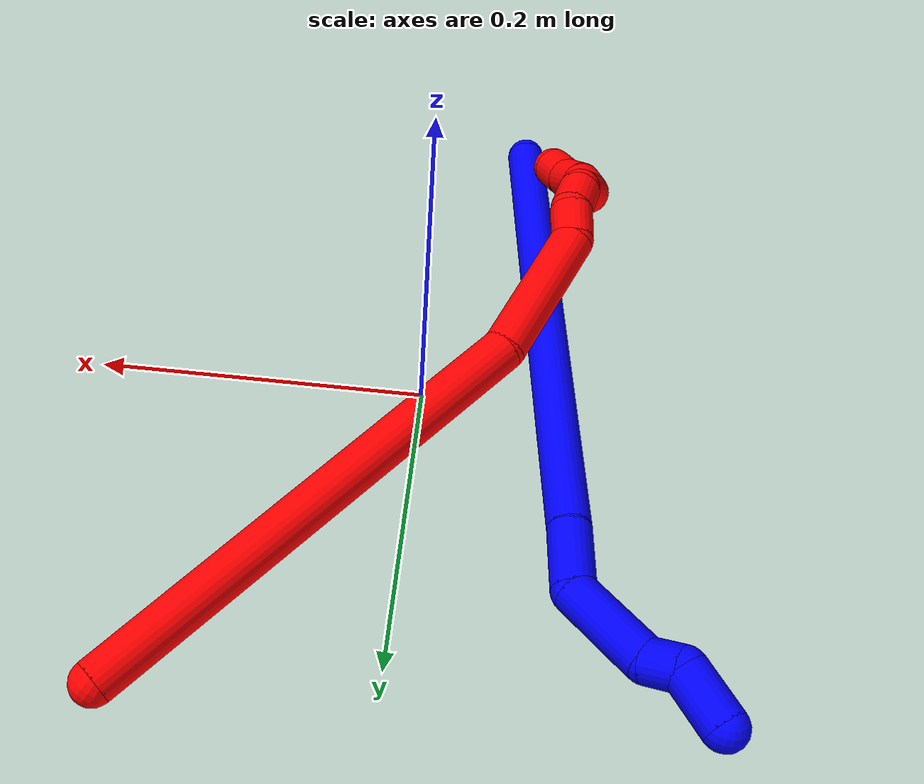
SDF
<sdf version="1.7">
 <world name="default">
  <plugin name="TubeGeneratorPlugin" filename="libtube_generator_plugin.so"/>
  <model name="photoneo_s_sensor">
   <static>1</static>
   <pose>0 0 2 1.57079 1.57079 3.14159</pose>
   <link name="link">
    <inertial><mass>0.1</mass></inertial>
    <sensor name="sensor" type="depth">
     <update_rate>30</update_rate>
     <camera>
      <horizontal_fov>1.22</horizontal_fov>
      <image><width>1920</width><height>1200</height><format>B8G8R8</format></image>
      <clip><near>0.1</near><far>4</far></clip>
      <depth_camera><output>points</output></depth_camera>
     </camera>
     <plugin name="camera_plugin" filename="libgazebo_ros_depth_camera.so">
      <baseline>0.2</baseline>
      <alwaysOn>1</alwaysOn>
      <updateRate>0.0</updateRate>
      <cameraName>camera_ir</cameraName>
      <imageTopicName>/camera/color/image_raw</imageTopicName>
      <cameraInfoTopicName>/camera/color/camera_info</cameraInfoTopicName>
      <depthImageTopicName>/camera/depth/image_raw</depthImageTopicName>
      <depthImageCameraInfoTopicName>/camera/depth/camera_info</depthImageCameraInfoTopicName>
      <pointCloudTopicName>/camera/depth/points</pointCloudTopicName>
      <frameName>fr_optical</frameName>
      <pointCloudCutoff>0.1</pointCloudCutoff>
      <pointCloudCutoffMax>2.0</pointCloudCutoffMax>
      <distortionK1>0</distortionK1>
      <distortionK2>0</distortionK2>
      <distortionK3>0</distortionK3>
      <distortionT1>0</distortionT1>
      <distortionT2>0</distortionT2>
      <CxPrime>0</CxPrime>
      <Cx>0</Cx>
      <Cy>0</Cy>
      <focalLength>0</focalLength>
      <hackBaseline>0</hackBaseline>
     </plugin>
    </sensor>
   </link>
  </model>
  <gravity>0 0 -9.8</gravity>
  <magnetic_field>6e-06 2.3e-05 -4.2e-05</magnetic_field>
  <atmosphere type="adiabatic"/>
  <physics name="default_physics" default="0" type="ode">
   <max_step_size>0.003</max_step_size>
   <real_time_factor>1</real_time_factor>
   <real_time_update_rate>1000</real_time_update_rate>
   <max_contacts>10000</max_contacts>
   <ode>
    <solver>
     <type>quick</type>
     <iters>100</iters>
     <sor>1.3</sor>
     <use_dynamic_moi_rescaling>0</use_dynamic_moi_rescaling>
    </solver>
    <constraints>
     <contact_max_correcting_vel>0</contact_max_correcting_vel>
     <contact_surface_layer>0.001</contact_surface_layer>
     <cfm>0</cfm>
     <erp>0.2</erp>
    </constraints>
   </ode>
  </physics>
  <scene><ambient>0.4 0.4 0.4 1</ambient><background>0.7 0.7 0.7 1</background><shadows>0</shadows></scene>
  <audio><device>default</device></audio>
  <spherical_coordinates>
   <surface_model>EARTH_WGS84</surface_model>
   <latitude_deg>0</latitude_deg>
   <longitude_deg>0</longitude_deg>
   <elevation>0</elevation>
   <heading_deg>0</heading_deg>
  </spherical_coordinates>
  <model name="bin">
   <static>1</static>
   <link name="bottom">
    <collision name="collision-bottom">
     <pose>0 0 -0.01 0 -0 0</pose>
     <geometry><box><size>0.8 0.6 0.02</size></box></geometry>
     <surface>
      <friction><ode><mu>100</mu><mu2>100</mu2></ode></friction>
      <contact><collide_bitmask>65535</collide_bitmask></contact>
     </surface>
    </collision>
   </link>
   <link name="west_wall">
    <collision name="collision-west_wall">
     <pose>-0.41 0 0.1 0 -0 0</pose>
     <geometry><box><size>0.02 0.6 0.2</size></box></geometry>
     <surface>
      <friction><ode><mu>100</mu><mu2>100</mu2></ode></friction>
      <contact><collide_bitmask>65535</collide_bitmask></contact>
     </surface>
    </collision>
   </link>
   <link name="east_wall">
    <collision name="collision-east_wall">
     <pose>0.41 0 0.1 0 -0 0</pose>
     <geometry><box><size>0.02 0.6 0.2</size></box></geometry>
     <surface>
      <friction><ode><mu>100</mu><mu2>100</mu2></ode></friction>
      <contact><collide_bitmask>65535</collide_bitmask></contact>
     </surface>
    </collision>
   </link>
   <link name="south_wall">
    <collision name="collision-south_wall">
     <pose>0 -0.31 0.1 0 -0 0</pose>
     <geometry><box><size>0.8 0.02 0.2</size></box></geometry>
     <surface>
      <friction><ode><mu>100</mu><mu2>100</mu2></ode></friction>
      <contact><collide_bitmask>65535</collide_bitmask></contact>
     </surface>
    </collision>
   </link>
   <link name="north_wall">
    <collision name="collision-north_wall">
     <pose>0 0.31 0.1 0 -0 0</pose>
     <geometry><box><size>0.8 0.02 0.2</size></box></geometry>
     <surface>
      <friction><ode><mu>100</mu><mu2>100</mu2></ode></friction>
      <contact><collide_bitmask>65535</collide_bitmask></contact>
     </surface>
    </collision>
   </link>
  </model>
  <model name="1">
   <static>0</static>
   <link name="1">
    <collision name="collision-cylinder-e_1_1_4">
     <pose>-0.03785 0.168029 -0.037221 -1.78879 -0.216483 0.269107</pose>
     <geometry><cylinder><radius>0.0125</radius><length>0.35243</length></cylinder></geometry>
     <surface>
      <friction><ode><mu>1.16</mu><mu2>1.16</mu2><slip1>0</slip1><slip2>0</slip2></ode></friction>
      <contact><ode><kp>1e+06</kp><kd>1</kd><max_vel>0</max_vel><min_depth>0.001</min_depth></ode></contact>
     </surface>
    </collision>
    <visual name="visual-cylinder-e_1_1_4">
     <pose>-0.03785 0.168029 -0.037221 -1.78879 -0.216483 0.269107</pose>
     <geometry><cylinder><radius>0.0125</radius><length>0.35243</length></cylinder></geometry>
     <material><ambient>0 0 1 1</ambient></material>
    </visual>
    <collision name="collision-cylinder-e_2_4_5">
     <pose>-0.079586 0.354704 -0.080314 -1.87588 -0.196183 0.266731</pose>
     <geometry><cylinder><radius>0.0125</radius><length>0.039864</length></cylinder></geometry>
     <surface>
      <friction><ode><mu>1.16</mu><mu2>1.16</mu2><slip1>0</slip1><slip2>0</slip2></ode></friction>
      <contact><ode><kp>1e+06</kp><kd>1</kd><max_vel>0</max_vel><min_depth>0.001</min_depth></ode></contact>
     </surface>
    </collision>
    <visual name="visual-cylinder-e_2_4_5">
     <pose>-0.079586 0.354704 -0.080314 -1.87588 -0.196183 0.266731</pose>
     <geometry><cylinder><radius>0.0125</radius><length>0.039864</length></cylinder></geometry>
     <material><ambient>0 0 1 1</ambient></material>
    </visual>
    <collision name="collision-cylinder-e_3_5_6">
     <pose>-0.103576 0.391876 -0.087774 -1.6563 -0.824447 0.889117</pose>
     <geometry><cylinder><radius>0.0125</radius><length>0.054768</length></cylinder></geometry>
     <surface>
      <friction><ode><mu>1.16</mu><mu2>1.16</mu2><slip1>0</slip1><slip2>0</slip2></ode></friction>
      <contact><ode><kp>1e+06</kp><kd>1</kd><max_vel>0</max_vel><min_depth>0.001</min_depth></ode></contact>
     </surface>
    </collision>
    <visual name="visual-cylinder-e_3_5_6">
     <pose>-0.103576 0.391876 -0.087774 -1.6563 -0.824447 0.889117</pose>
     <geometry><cylinder><radius>0.0125</radius><length>0.054768</length></cylinder></geometry>
     <material><ambient>0 0 1 1</ambient></material>
    </visual>
    <collision name="collision-cylinder-e_4_6_7">
     <pose>-0.132447 0.414196 -0.086147 -0.868035 -1.05474 0.527302</pose>
     <geometry><cylinder><radius>0.0125</radius><length>0.020158</length></cylinder></geometry>
     <surface>
      <friction><ode><mu>1.16</mu><mu2>1.16</mu2><slip1>0</slip1><slip2>0</slip2></ode></friction>
      <contact><ode><kp>1e+06</kp><kd>1</kd><max_vel>0</max_vel><min_depth>0.001</min_depth></ode></contact>
     </surface>
    </collision>
    <visual name="visual-cylinder-e_4_6_7">
     <pose>-0.132447 0.414196 -0.086147 -0.868035 -1.05474 0.527302</pose>
     <geometry><cylinder><radius>0.0125</radius><length>0.020158</length></cylinder></geometry>
     <material><ambient>0 0 1 1</ambient></material>
    </visual>
    <collision name="collision-cylinder-e_5_7_2">
     <pose>-0.152236 0.428881 -0.088276 -2.02693 -0.737581 1.11014</pose>
     <geometry><cylinder><radius>0.0125</radius><length>0.03278</length></cylinder></geometry>
     <surface>
      <friction><ode><mu>1.16</mu><mu2>1.16</mu2><slip1>0</slip1><slip2>0</slip2></ode></friction>
      <contact><ode><kp>1e+06</kp><kd>1</kd><max_vel>0</max_vel><min_depth>0.001</min_depth></ode></contact>
     </surface>
    </collision>
    <visual name="visual-cylinder-e_5_7_2">
     <pose>-0.152236 0.428881 -0.088276 -2.02693 -0.737581 1.11014</pose>
     <geometry><cylinder><radius>0.0125</radius><length>0.03278</length></cylinder></geometry>
     <material><ambient>0 0 1 1</ambient></material>
    </visual>
    <collision name="collision-sphere-2">
     <pose>-0.163258 0.439771 -0.093619 0 -0 0</pose>
     <geometry><sphere><radius>0.0125</radius></sphere></geometry>
     <surface>
      <friction><ode><mu>1.16</mu><mu2>1.16</mu2><slip1>0</slip1><slip2>0</slip2></ode></friction>
      <contact><ode><kp>1e+06</kp><kd>1</kd><max_vel>0</max_vel><min_depth>0.001</min_depth></ode></contact>
     </surface>
    </collision>
    <visual name="visual-sphere-2">
     <pose>-0.163258 0.439771 -0.093619 0 -0 0</pose>
     <geometry><sphere><radius>0.0125</radius></sphere></geometry>
     <material><ambient>0 0 1 1</ambient></material>
    </visual>
    <collision name="collision-sphere-7">
     <pose>-0.141213 0.417991 -0.082933 0 -0 0</pose>
     <geometry><sphere><radius>0.0125</radius></sphere></geometry>
     <surface>
      <friction><ode><mu>1.16</mu><mu2>1.16</mu2><slip1>0</slip1><slip2>0</slip2></ode></friction>
      <contact><ode><kp>1e+06</kp><kd>1</kd><max_vel>0</max_vel><min_depth>0.001</min_depth></ode></contact>
     </surface>
    </collision>
    <visual name="visual-sphere-7">
     <pose>-0.141213 0.417991 -0.082933 0 -0 0</pose>
     <geometry><sphere><radius>0.0125</radius></sphere></geometry>
     <material><ambient>0 0 1 1</ambient></material>
    </visual>
    <collision name="collision-sphere-6">
     <pose>-0.12368 0.410401 -0.089362 0 -0 0</pose>
     <geometry><sphere><radius>0.0125</radius></sphere></geometry>
     <surface>
      <friction><ode><mu>1.16</mu><mu2>1.16</mu2><slip1>0</slip1><slip2>0</slip2></ode></friction>
      <contact><ode><kp>1e+06</kp><kd>1</kd><max_vel>0</max_vel><min_depth>0.001</min_depth></ode></contact>
     </surface>
    </collision>
    <visual name="visual-sphere-6">
     <pose>-0.12368 0.410401 -0.089362 0 -0 0</pose>
     <geometry><sphere><radius>0.0125</radius></sphere></geometry>
     <material><ambient>0 0 1 1</ambient></material>
    </visual>
    <collision name="collision-sphere-5">
     <pose>-0.083471 0.373351 -0.086186 0 -0 0</pose>
     <geometry><sphere><radius>0.0125</radius></sphere></geometry>
     <surface>
      <friction><ode><mu>1.16</mu><mu2>1.16</mu2><slip1>0</slip1><slip2>0</slip2></ode></friction>
      <contact><ode><kp>1e+06</kp><kd>1</kd><max_vel>0</max_vel><min_depth>0.001</min_depth></ode></contact>
     </surface>
    </collision>
    <visual name="visual-sphere-5">
     <pose>-0.083471 0.373351 -0.086186 0 -0 0</pose>
     <geometry><sphere><radius>0.0125</radius></sphere></geometry>
     <material><ambient>0 0 1 1</ambient></material>
    </visual>
    <collision name="collision-sphere-1">
     <geometry><sphere><radius>0.0125</radius></sphere></geometry>
     <surface>
      <friction><ode><mu>1.16</mu><mu2>1.16</mu2><slip1>0</slip1><slip2>0</slip2></ode></friction>
      <contact><ode><kp>1e+06</kp><kd>1</kd><max_vel>0</max_vel><min_depth>0.001</min_depth></ode></contact>
     </surface>
    </collision>
    <visual name="visual-sphere-1">
     <geometry><sphere><radius>0.0125</radius></sphere></geometry>
     <material><ambient>0 0 1 1</ambient></material>
    </visual>
    <collision name="collision-sphere-4">
     <pose>-0.0757 0.336057 -0.074442 0 -0 0</pose>
     <geometry><sphere><radius>0.0125</radius></sphere></geometry>
     <surface>
      <friction><ode><mu>1.16</mu><mu2>1.16</mu2><slip1>0</slip1><slip2>0</slip2></ode></friction>
      <contact><ode><kp>1e+06</kp><kd>1</kd><max_vel>0</max_vel><min_depth>0.001</min_depth></ode></contact>
     </surface>
    </collision>
    <visual name="visual-sphere-4">
     <pose>-0.0757 0.336057 -0.074442 0 -0 0</pose>
     <geometry><sphere><radius>0.0125</radius></sphere></geometry>
     <material><ambient>0 0 1 1</ambient></material>
    </visual>
    <inertial>
     <pose>-0.05969 0.234457 -0.051514 0 -0 0</pose>
     <mass>0.5</mass>
     <inertia>
      <ixx>0.004414</ixx>
      <ixy>0</ixy>
      <ixz>0</ixz>
      <iyy>0.000448</iyy>
      <iyz>0</iyz>
      <izz>-0.002716</izz>
     </inertia>
    </inertial>
   </link>
   <pose>-0.052094 -0.245024 0.011499 0.236768 -0.045411 -0.107084</pose>
  </model>
  <model name="2">
   <static>0</static>
   <link name="2">
    <collision name="collision-cylinder-e_1_1_4">
     <pose>0.025424 -0.076379 -0.11758 2.56551 0.179381 0.589392</pose>
     <geometry><cylinder><radius>0.0125</radius><length>0.284993</length></cylinder></geometry>
     <surface>
      <friction><ode><mu>1.16</mu><mu2>1.16</mu2><slip1>0</slip1><slip2>0</slip2></ode></friction>
      <contact><ode><kp>1e+06</kp><kd>1</kd><max_vel>0</max_vel><min_depth>0.001</min_depth></ode></contact>
     </surface>
    </collision>
    <visual name="visual-cylinder-e_1_1_4">
     <pose>0.025424 -0.076379 -0.11758 2.56551 0.179381 0.589392</pose>
     <geometry><cylinder><radius>0.0125</radius><length>0.284993</length></cylinder></geometry>
     <material><ambient>1 0 0 1</ambient></material>
    </visual>
    <collision name="collision-cylinder-e_2_4_5">
     <pose>0.045645 -0.177741 -0.269475 2.51226 -0.121975 -0.370907</pose>
     <geometry><cylinder><radius>0.0125</radius><length>0.085527</length></cylinder></geometry>
     <surface>
      <friction><ode><mu>1.16</mu><mu2>1.16</mu2><slip1>0</slip1><slip2>0</slip2></ode></friction>
      <contact><ode><kp>1e+06</kp><kd>1</kd><max_vel>0</max_vel><min_depth>0.001</min_depth></ode></contact>
     </surface>
    </collision>
    <visual name="visual-cylinder-e_2_4_5">
     <pose>0.045645 -0.177741 -0.269475 2.51226 -0.121975 -0.370907</pose>
     <geometry><cylinder><radius>0.0125</radius><length>0.085527</length></cylinder></geometry>
     <material><ambient>1 0 0 1</ambient></material>
    </visual>
    <collision name="collision-cylinder-e_3_5_6">
     <pose>0.03418 -0.208676 -0.310704 2.43095 -0.601581 -1.39258</pose>
     <geometry><cylinder><radius>0.0125</radius><length>0.022131</length></cylinder></geometry>
     <surface>
      <friction><ode><mu>1.16</mu><mu2>1.16</mu2><slip1>0</slip1><slip2>0</slip2></ode></friction>
      <contact><ode><kp>1e+06</kp><kd>1</kd><max_vel>0</max_vel><min_depth>0.001</min_depth></ode></contact>
     </surface>
    </collision>
    <visual name="visual-cylinder-e_3_5_6">
     <pose>0.03418 -0.208676 -0.310704 2.43095 -0.601581 -1.39258</pose>
     <geometry><cylinder><radius>0.0125</radius><length>0.022131</length></cylinder></geometry>
     <material><ambient>1 0 0 1</ambient></material>
    </visual>
    <collision name="collision-cylinder-e_4_6_7">
     <pose>0.02531 -0.223177 -0.323707 2.18959 -0.243504 -0.466054</pose>
     <geometry><cylinder><radius>0.0125</radius><length>0.02163</length></cylinder></geometry>
     <surface>
      <friction><ode><mu>1.16</mu><mu2>1.16</mu2><slip1>0</slip1><slip2>0</slip2></ode></friction>
      <contact><ode><kp>1e+06</kp><kd>1</kd><max_vel>0</max_vel><min_depth>0.001</min_depth></ode></contact>
     </surface>
    </collision>
    <visual name="visual-cylinder-e_4_6_7">
     <pose>0.02531 -0.223177 -0.323707 2.18959 -0.243504 -0.466054</pose>
     <geometry><cylinder><radius>0.0125</radius><length>0.02163</length></cylinder></geometry>
     <material><ambient>1 0 0 1</ambient></material>
    </visual>
    <collision name="collision-cylinder-e_5_7_8">
     <pose>0.024073 -0.244341 -0.330381 1.6172 0.108128 0.113256</pose>
     <geometry><cylinder><radius>0.0125</radius><length>0.025403</length></cylinder></geometry>
     <surface>
      <friction><ode><mu>1.16</mu><mu2>1.16</mu2><slip1>0</slip1><slip2>0</slip2></ode></friction>
      <contact><ode><kp>1e+06</kp><kd>1</kd><max_vel>0</max_vel><min_depth>0.001</min_depth></ode></contact>
     </surface>
    </collision>
    <visual name="visual-cylinder-e_5_7_8">
     <pose>0.024073 -0.244341 -0.330381 1.6172 0.108128 0.113256</pose>
     <geometry><cylinder><radius>0.0125</radius><length>0.025403</length></cylinder></geometry>
     <material><ambient>1 0 0 1</ambient></material>
    </visual>
    <collision name="collision-cylinder-e_6_8_9">
     <pose>0.020401 -0.265629 -0.33232 1.72558 -0.521314 -0.604076</pose>
     <geometry><cylinder><radius>0.0125</radius><length>0.02025</length></cylinder></geometry>
     <surface>
      <friction><ode><mu>1.16</mu><mu2>1.16</mu2><slip1>0</slip1><slip2>0</slip2></ode></friction>
      <contact><ode><kp>1e+06</kp><kd>1</kd><max_vel>0</max_vel><min_depth>0.001</min_depth></ode></contact>
     </surface>
    </collision>
    <visual name="visual-cylinder-e_6_8_9">
     <pose>0.020401 -0.265629 -0.33232 1.72558 -0.521314 -0.604076</pose>
     <geometry><cylinder><radius>0.0125</radius><length>0.02025</length></cylinder></geometry>
     <material><ambient>1 0 0 1</ambient></material>
    </visual>
    <collision name="collision-cylinder-e_7_9_10">
     <pose>0.009645 -0.282371 -0.332153 1.38443 -0.608038 -0.508953</pose>
     <geometry><cylinder><radius>0.0125</radius><length>0.020002</length></cylinder></geometry>
     <surface>
      <friction><ode><mu>1.16</mu><mu2>1.16</mu2><slip1>0</slip1><slip2>0</slip2></ode></friction>
      <contact><ode><kp>1e+06</kp><kd>1</kd><max_vel>0</max_vel><min_depth>0.001</min_depth></ode></contact>
     </surface>
    </collision>
    <visual name="visual-cylinder-e_7_9_10">
     <pose>0.009645 -0.282371 -0.332153 1.38443 -0.608038 -0.508953</pose>
     <geometry><cylinder><radius>0.0125</radius><length>0.020002</length></cylinder></geometry>
     <material><ambient>1 0 0 1</ambient></material>
    </visual>
    <collision name="collision-cylinder-e_8_10_2">
     <pose>-0.002677 -0.297979 -0.330911 1.60777 -0.719243 -0.743949</pose>
     <geometry><cylinder><radius>0.0125</radius><length>0.020063</length></cylinder></geometry>
     <surface>
      <friction><ode><mu>1.16</mu><mu2>1.16</mu2><slip1>0</slip1><slip2>0</slip2></ode></friction>
      <contact><ode><kp>1e+06</kp><kd>1</kd><max_vel>0</max_vel><min_depth>0.001</min_depth></ode></contact>
     </surface>
    </collision>
    <visual name="visual-cylinder-e_8_10_2">
     <pose>-0.002677 -0.297979 -0.330911 1.60777 -0.719243 -0.743949</pose>
     <geometry><cylinder><radius>0.0125</radius><length>0.020063</length></cylinder></geometry>
     <material><ambient>1 0 0 1</ambient></material>
    </visual>
    <collision name="collision-sphere-2">
     <pose>-0.009286 -0.305521 -0.33119 0 -0 0</pose>
     <geometry><sphere><radius>0.0125</radius></sphere></geometry>
     <surface>
      <friction><ode><mu>1.16</mu><mu2>1.16</mu2><slip1>0</slip1><slip2>0</slip2></ode></friction>
      <contact><ode><kp>1e+06</kp><kd>1</kd><max_vel>0</max_vel><min_depth>0.001</min_depth></ode></contact>
     </surface>
    </collision>
    <visual name="visual-sphere-2">
     <pose>-0.009286 -0.305521 -0.33119 0 -0 0</pose>
     <geometry><sphere><radius>0.0125</radius></sphere></geometry>
     <material><ambient>1 0 0 1</ambient></material>
    </visual>
    <collision name="collision-sphere-10">
     <pose>0.003932 -0.290437 -0.330632 0 -0 0</pose>
     <geometry><sphere><radius>0.0125</radius></sphere></geometry>
     <surface>
      <friction><ode><mu>1.16</mu><mu2>1.16</mu2><slip1>0</slip1><slip2>0</slip2></ode></friction>
      <contact><ode><kp>1e+06</kp><kd>1</kd><max_vel>0</max_vel><min_depth>0.001</min_depth></ode></contact>
     </surface>
    </collision>
    <visual name="visual-sphere-10">
     <pose>0.003932 -0.290437 -0.330632 0 -0 0</pose>
     <geometry><sphere><radius>0.0125</radius></sphere></geometry>
     <material><ambient>1 0 0 1</ambient></material>
    </visual>
    <collision name="collision-sphere-9">
     <pose>0.015359 -0.274304 -0.333674 0 -0 0</pose>
     <geometry><sphere><radius>0.0125</radius></sphere></geometry>
     <surface>
      <friction><ode><mu>1.16</mu><mu2>1.16</mu2><slip1>0</slip1><slip2>0</slip2></ode></friction>
      <contact><ode><kp>1e+06</kp><kd>1</kd><max_vel>0</max_vel><min_depth>0.001</min_depth></ode></contact>
     </surface>
    </collision>
    <visual name="visual-sphere-9">
     <pose>0.015359 -0.274304 -0.333674 0 -0 0</pose>
     <geometry><sphere><radius>0.0125</radius></sphere></geometry>
     <material><ambient>1 0 0 1</ambient></material>
    </visual>
    <collision name="collision-sphere-4">
     <pose>0.050849 -0.152757 -0.235161 0 -0 0</pose>
     <geometry><sphere><radius>0.0125</radius></sphere></geometry>
     <surface>
      <friction><ode><mu>1.16</mu><mu2>1.16</mu2><slip1>0</slip1><slip2>0</slip2></ode></friction>
      <contact><ode><kp>1e+06</kp><kd>1</kd><max_vel>0</max_vel><min_depth>0.001</min_depth></ode></contact>
     </surface>
    </collision>
    <visual name="visual-sphere-4">
     <pose>0.050849 -0.152757 -0.235161 0 -0 0</pose>
     <geometry><sphere><radius>0.0125</radius></sphere></geometry>
     <material><ambient>1 0 0 1</ambient></material>
    </visual>
    <collision name="collision-sphere-1">
     <geometry><sphere><radius>0.0125</radius></sphere></geometry>
     <surface>
      <friction><ode><mu>1.16</mu><mu2>1.16</mu2><slip1>0</slip1><slip2>0</slip2></ode></friction>
      <contact><ode><kp>1e+06</kp><kd>1</kd><max_vel>0</max_vel><min_depth>0.001</min_depth></ode></contact>
     </surface>
    </collision>
    <visual name="visual-sphere-1">
     <geometry><sphere><radius>0.0125</radius></sphere></geometry>
     <material><ambient>1 0 0 1</ambient></material>
    </visual>
    <collision name="collision-sphere-8">
     <pose>0.025444 -0.256954 -0.330967 0 -0 0</pose>
     <geometry><sphere><radius>0.0125</radius></sphere></geometry>
     <surface>
      <friction><ode><mu>1.16</mu><mu2>1.16</mu2><slip1>0</slip1><slip2>0</slip2></ode></friction>
      <contact><ode><kp>1e+06</kp><kd>1</kd><max_vel>0</max_vel><min_depth>0.001</min_depth></ode></contact>
     </surface>
    </collision>
    <visual name="visual-sphere-8">
     <pose>0.025444 -0.256954 -0.330967 0 -0 0</pose>
     <geometry><sphere><radius>0.0125</radius></sphere></geometry>
     <material><ambient>1 0 0 1</ambient></material>
    </visual>
    <collision name="collision-sphere-5">
     <pose>0.040442 -0.202725 -0.303789 0 -0 0</pose>
     <geometry><sphere><radius>0.0125</radius></sphere></geometry>
     <surface>
      <friction><ode><mu>1.16</mu><mu2>1.16</mu2><slip1>0</slip1><slip2>0</slip2></ode></friction>
      <contact><ode><kp>1e+06</kp><kd>1</kd><max_vel>0</max_vel><min_depth>0.001</min_depth></ode></contact>
     </surface>
    </collision>
    <visual name="visual-sphere-5">
     <pose>0.040442 -0.202725 -0.303789 0 -0 0</pose>
     <geometry><sphere><radius>0.0125</radius></sphere></geometry>
     <material><ambient>1 0 0 1</ambient></material>
    </visual>
    <collision name="collision-sphere-6">
     <pose>0.027917 -0.214627 -0.317619 0 -0 0</pose>
     <geometry><sphere><radius>0.0125</radius></sphere></geometry>
     <surface>
      <friction><ode><mu>1.16</mu><mu2>1.16</mu2><slip1>0</slip1><slip2>0</slip2></ode></friction>
      <contact><ode><kp>1e+06</kp><kd>1</kd><max_vel>0</max_vel><min_depth>0.001</min_depth></ode></contact>
     </surface>
    </collision>
    <visual name="visual-sphere-6">
     <pose>0.027917 -0.214627 -0.317619 0 -0 0</pose>
     <geometry><sphere><radius>0.0125</radius></sphere></geometry>
     <material><ambient>1 0 0 1</ambient></material>
    </visual>
    <collision name="collision-sphere-7">
     <pose>0.022702 -0.231727 -0.329795 0 -0 0</pose>
     <geometry><sphere><radius>0.0125</radius></sphere></geometry>
     <surface>
      <friction><ode><mu>1.16</mu><mu2>1.16</mu2><slip1>0</slip1><slip2>0</slip2></ode></friction>
      <contact><ode><kp>1e+06</kp><kd>1</kd><max_vel>0</max_vel><min_depth>0.001</min_depth></ode></contact>
     </surface>
    </collision>
    <visual name="visual-sphere-7">
     <pose>0.022702 -0.231727 -0.329795 0 -0 0</pose>
     <geometry><sphere><radius>0.0125</radius></sphere></geometry>
     <material><ambient>1 0 0 1</ambient></material>
    </visual>
    <inertial>
     <pose>0.027235 -0.139254 -0.19768 0 -0 0</pose>
     <mass>0.5</mass>
     <inertia>
      <ixx>0.002682</ixx>
      <ixy>0</ixy>
      <ixz>0</ixz>
      <iyy>-0.000274</iyy>
      <iyz>0</iyz>
      <izz>0.000719</izz>
     </inertia>
    </inertial>
   </link>
   <pose>0.140455 0.233776 0.012028 2.42696 0.314275 2.66942</pose>
  </model>
 </world>
</sdf>
